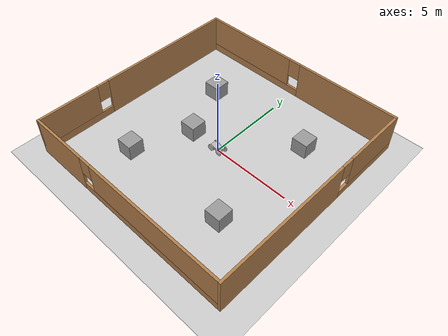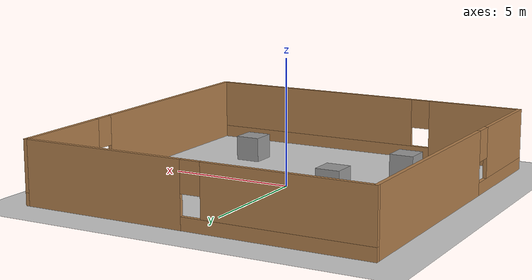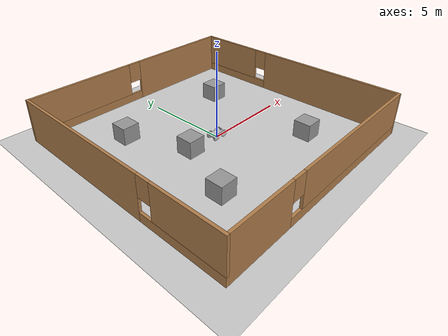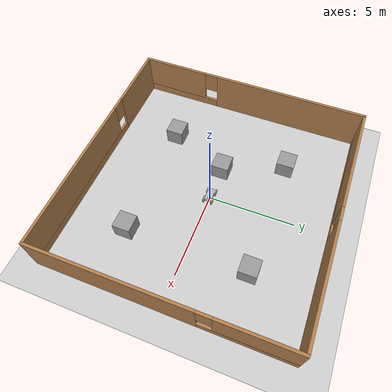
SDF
<?xml version="1.0" ?>
<sdf version="1.5">
    <world name="default">
        <scene>
            <origin_visual>false</origin_visual>
        </scene>

        <include>
            <uri>model://sun</uri>
        </include>

        <include>
            <uri>model://ground_plane</uri>
        </include>

        <model name="drl_rover">
            <include>
                <uri>model://rover</uri>
            </include>
            <plugin name="DRLPlugin" filename="libDRLPlugin.so">
                <mode>train</mode>
                <max_steps>2000</max_steps>
                <chassis_name>rover::chassis</chassis_name>
                <front_left_joint>rover::front_left_joint</front_left_joint>
                <front_right_joint>rover::front_right_joint</front_right_joint>
                <rear_left_joint>rover::rear_left_joint</rear_left_joint>
                <rear_right_joint>rover::rear_right_joint</rear_right_joint>
            </plugin>
        </model>

        <include>
            <uri>model://walls</uri>
        </include>

        <include>
            <uri>model://box_obstacle</uri>
            <name>box_obstacle_01</name>
            <pose>3.5 3.5 0.5 0 0 0</pose>
        </include>

        <include>
            <uri>model://box_obstacle</uri>
            <name>box_obstacle_02</name>
            <pose>-3.5 3.5 0.5 0 0 0</pose>
        </include>

        <include>
            <uri>model://box_obstacle</uri>
            <name>box_obstacle_03</name>
            <pose>-3.5 -3.5 0.5 0 0 0</pose>
        </include>

        <include>
            <uri>model://box_obstacle</uri>
            <name>box_obstacle_04</name>
            <pose>3.5 -3.5 0.5 0 0 0</pose>
        </include>

        <include>
            <uri>model://box_obstacle</uri>
            <name>box_obstacle_05</name>
            <pose>-2 0 0.5 0 0 0</pose>
        </include>

    </world>
</sdf>

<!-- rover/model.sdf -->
<sdf version="1.4">
    <model name="rover">
        <static>false</static>
        <pose>0 0 .12 0 0 0</pose>

        <link name="camera_link">
            <pose>0.3 0 0.27 0 0 0</pose>
            <inertial>
                <mass>0.15</mass>
            </inertial>
            <collision name="camera_collision">
                <geometry>
                    <box>
                        <size>0.05 0.1 0.1</size>
                    </box>
                </geometry>
            </collision>
            <visual name="camera_visual">
                <geometry>
                    <box>
                        <size>0.05 0.1 0.1</size>
                    </box>
                </geometry>
            </visual>
            <sensor name="camera_sensor" type="camera">
                <camera>
                    <horizontal_fov>1.045</horizontal_fov>
                    <image>
                        <width>320</width>
                        <height>240</height>
                        <format>B8G8R8</format>
                    </image>
                    <clip>
                        <near>0.1</near>
                        <far>100</far>
                    </clip>
                </camera>
                <always_on>1</always_on>
                <update_rate>25</update_rate>
                <visualize>true</visualize>
            </sensor>
        </link>

        <joint name="camera_joint" type="revolute">
            <parent>chassis</parent>
            <child>camera_link</child>
            <axis>
                <xyz>0 0 1</xyz>
                <limit>
                    <upper>0</upper>
                    <lower>0</lower>
                </limit>
            </axis>
        </joint>

        <link name="chassis">
            <pose>-0.02 0 0.15 0 0 0</pose>
            <inertial>
                <mass>10</mass>
            </inertial>
            <collision name="chassis_collision">
                <geometry>
                    <box>
                        <size>.8 .4 .16</size>
                    </box>
                </geometry>
            </collision>
            <visual name="chassis_visual">
                <geometry>
                    <box>
                        <size>.8 .4 .16</size>
                    </box>
                </geometry>
            </visual>
            <sensor name="contact_sensor_chassis" type="contact">
                <contact>
                    <collision>chassis_collision</collision>
                </contact>
            </sensor>
        </link>

        <link name="rear_left_wheel">
            <pose>-0.3 0.24 0.1 0 1.5707 1.5707</pose>
            <inertial>
                <mass>1.5</mass>
            </inertial>
            <collision name="rear_left_wheel_collision">
                <geometry>
                    <cylinder>
                        <radius>.2</radius>
                        <length>.07</length>
                    </cylinder>
                </geometry>
                <surface>
                    <friction>
                        <ode>
                            <mu>100</mu>
                            <mu2>50</mu2>
                        </ode>
                    </friction>
                </surface>
            </collision>
            <visual name="rear_left_wheel_visual">
                <geometry>
                    <cylinder>
                        <radius>.2</radius>
                        <length>.07</length>
                    </cylinder>
                </geometry>
            </visual>
            <sensor name="contact_sensor_rlw" type="contact">
                <contact>
                    <collision>rear_left_wheel_collision</collision>
                </contact>
            </sensor>
        </link>

        <joint type="revolute" name="rear_left_joint">
            <child>rear_left_wheel</child>
            <parent>chassis</parent>
            <axis>
                <xyz>0 1 0</xyz>
            </axis>
        </joint>

        <link name="rear_right_wheel">
            <pose>-0.3 -0.24 0.1 0 1.5707 1.5707</pose>
            <inertial>
                <mass>1.5</mass>
            </inertial>
            <collision name="rear_right_wheel_collision">
                <geometry>
                    <cylinder>
                        <radius>.2</radius>
                        <length>.07</length>
                    </cylinder>
                </geometry>
                <surface>
                    <friction>
                        <ode>
                            <mu>100</mu>
                            <mu2>50</mu2>
                        </ode>
                    </friction>
                </surface>
            </collision>
            <visual name="rear_right_wheel_visual">
                <geometry>
                    <cylinder>
                        <radius>.2</radius>
                        <length>.07</length>
                    </cylinder>
                </geometry>
            </visual>
            <sensor name="contact_sensor_rrw" type="contact">
                <contact>
                    <collision>rear_right_wheel_collision</collision>
                </contact>
            </sensor>
        </link>

        <joint type="revolute" name="rear_right_joint">
            <child>rear_right_wheel</child>
            <parent>chassis</parent>
            <axis>
                <xyz>0 1 0</xyz>
            </axis>
        </joint>

        <link name="front_left_wheel">
            <pose>0.3 0.24 0.1 0 1.5707 1.5707</pose>
            <inertial>
                <mass>1.5</mass>
            </inertial>
            <collision name="front_left_wheel_collision">
                <geometry>
                    <cylinder>
                        <radius>.2</radius>
                        <length>.07</length>
                    </cylinder>
                </geometry>
                <surface>
                    <friction>
                        <ode>
                            <mu>100</mu>
                            <mu2>50</mu2>
                        </ode>
                    </friction>
                </surface>
            </collision>
            <visual name="front_left_wheel_visual">
                <geometry>
                    <cylinder>
                        <radius>.2</radius>
                        <length>.07</length>
                    </cylinder>
                </geometry>
            </visual>
            <sensor name="contact_sensor_flw" type="contact">
                <contact>
                    <collision>front_left_wheel_collision</collision>
                </contact>
            </sensor>
        </link>

        <link name="front_left_connector">
            <pose>0.3 0.25 0.1 0 1.5707 1.5707</pose>
        </link>

        <joint type="revolute" name="front_left_joint">
            <parent>chassis</parent>
            <child>front_left_connector</child>
            <axis>
                <xyz>0 0 1</xyz>
            </axis>
        </joint>

        <joint type="revolute" name="front_left_joint2">
            <parent>front_left_connector</parent>
            <child>front_left_wheel</child>
            <axis>
                <xyz>0 1 0</xyz>
            </axis>
        </joint>

        <link name="front_right_wheel">
            <pose>0.3 -0.24 0.1 0 1.5707 1.5707</pose>
            <inertial>
                <mass>1.5</mass>
            </inertial>
            <collision name="front_right_wheel_collision">
                <geometry>
                    <cylinder>
                        <radius>.2</radius>
                        <length>.07</length>
                    </cylinder>
                </geometry>
                <surface>
                    <friction>
                        <ode>
                            <mu>100</mu>
                            <mu2>50</mu2>
                        </ode>
                    </friction>
                </surface>
            </collision>
            <visual name="front_right_wheel_visual">
                <geometry>
                    <cylinder>
                        <radius>.2</radius>
                        <length>.07</length>
                    </cylinder>
                </geometry>
            </visual>
            <sensor name="contact_sensor_frw" type="contact">
                <contact>
                    <collision>front_right_wheel_collision</collision>
                </contact>
            </sensor>
        </link>

        <link name="front_right_connector">
            <pose>0.3 -0.25 0.1 0 1.5707 1.5707</pose>
        </link>

        <joint type="revolute" name="front_right_joint">
            <parent>chassis</parent>
            <child>front_right_connector</child>
            <axis>
                <xyz>0 0 1</xyz>
                <limit>
                    <lower>-0.61</lower>
                    <upper>0.61</upper>
                </limit>
            </axis>
        </joint>

        <joint type="revolute" name="front_right_joint2">
            <parent>front_right_connector</parent>
            <child>front_right_wheel</child>
            <axis>
                <xyz>0 1 0</xyz>
            </axis>
        </joint>

    </model>
</sdf>

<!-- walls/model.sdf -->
<sdf version='1.6'>
  <model name='walls'>
    <pose frame=''>-0.030217 0.029853 0 0 -0 0</pose>
    <link name='Wall_11'>
      <pose frame=''>6.93375 -0 0 0 -0 1.5708</pose>
      <visual name='Wall_11_Visual_0'>
        <pose frame=''>-2.52614 0 1.25 0 -0 0</pose>
        <geometry>
          <box>
            <size>8.94773 0.15 2.5</size>
          </box>
        </geometry>
        <material>
          <script>
            <uri>file://media/materials/scripts/gazebo.material</uri>
            <name>Gazebo/Wood</name>
          </script>
          <ambient>1 1 1 1</ambient>
        </material>
        <meta>
          <layer>0</layer>
        </meta>
      </visual>
      <collision name='Wall_11_Collision_0'>
        <geometry>
          <box>
            <size>8.94773 0.15 2.5</size>
          </box>
        </geometry>
        <pose frame=''>-2.52614 0 1.25 0 -0 0</pose>
      </collision>
      <visual name='Wall_11_Visual_1'>
        <pose frame=''>4.47386 0 0.25 0 -0 0</pose>
        <geometry>
          <box>
            <size>5.05227 0.15 0.5</size>
          </box>
        </geometry>
        <material>
          <script>
            <uri>file://media/materials/scripts/gazebo.material</uri>
            <name>Gazebo/Wood</name>
          </script>
          <ambient>1 1 1 1</ambient>
        </material>
        <meta>
          <layer>0</layer>
        </meta>
      </visual>
      <collision name='Wall_11_Collision_1'>
        <geometry>
          <box>
            <size>5.05227 0.15 0.5</size>
          </box>
        </geometry>
        <pose frame=''>4.47386 0 0.25 0 -0 0</pose>
      </collision>
      <visual name='Wall_11_Visual_2'>
        <pose frame=''>4.87386 0 1.5 0 -0 0</pose>
        <geometry>
          <box>
            <size>4.25227 0.15 2</size>
          </box>
        </geometry>
        <material>
          <script>
            <uri>file://media/materials/scripts/gazebo.material</uri>
            <name>Gazebo/Wood</name>
          </script>
          <ambient>1 1 1 1</ambient>
        </material>
        <meta>
          <layer>0</layer>
        </meta>
      </visual>
      <collision name='Wall_11_Collision_2'>
        <geometry>
          <box>
            <size>4.25227 0.15 2</size>
          </box>
        </geometry>
        <pose frame=''>4.87386 0 1.5 0 -0 0</pose>
      </collision>
      <visual name='Wall_11_Visual_3'>
        <pose frame=''>2.34773 0 1.9 0 -0 0</pose>
        <geometry>
          <box>
            <size>0.8 0.15 1.2</size>
          </box>
        </geometry>
        <material>
          <script>
            <uri>file://media/materials/scripts/gazebo.material</uri>
            <name>Gazebo/Wood</name>
          </script>
          <ambient>1 1 1 1</ambient>
        </material>
        <meta>
          <layer>0</layer>
        </meta>
      </visual>
      <collision name='Wall_11_Collision_3'>
        <geometry>
          <box>
            <size>0.8 0.15 1.2</size>
          </box>
        </geometry>
        <pose frame=''>2.34773 0 1.9 0 -0 0</pose>
      </collision>
    </link>
    <link name='Wall_14'>
      <pose frame=''>-0.008745 6.925 0 0 -0 3.14159</pose>
      <visual name='Wall_14_Visual_0'>
        <pose frame=''>-3.65586 0 1.25 0 -0 0</pose>
        <geometry>
          <box>
            <size>6.68827 0.15 2.5</size>
          </box>
        </geometry>
        <material>
          <script>
            <uri>file://media/materials/scripts/gazebo.material</uri>
            <name>Gazebo/Wood</name>
          </script>
          <ambient>1 1 1 1</ambient>
        </material>
        <meta>
          <layer>0</layer>
        </meta>
      </visual>
      <collision name='Wall_14_Collision_0'>
        <geometry>
          <box>
            <size>6.68827 0.15 2.5</size>
          </box>
        </geometry>
        <pose frame=''>-3.65586 0 1.25 0 -0 0</pose>
      </collision>
      <visual name='Wall_14_Visual_1'>
        <pose frame=''>3.34414 0 0.25 0 -0 0</pose>
        <geometry>
          <box>
            <size>7.31173 0.15 0.5</size>
          </box>
        </geometry>
        <material>
          <script>
            <uri>file://media/materials/scripts/gazebo.material</uri>
            <name>Gazebo/Wood</name>
          </script>
          <ambient>1 1 1 1</ambient>
        </material>
        <meta>
          <layer>0</layer>
        </meta>
      </visual>
      <collision name='Wall_14_Collision_1'>
        <geometry>
          <box>
            <size>7.31173 0.15 0.5</size>
          </box>
        </geometry>
        <pose frame=''>3.34414 0 0.25 0 -0 0</pose>
      </collision>
      <visual name='Wall_14_Visual_2'>
        <pose frame=''>3.74413 0 1.5 0 -0 0</pose>
        <geometry>
          <box>
            <size>6.51173 0.15 2</size>
          </box>
        </geometry>
        <material>
          <script>
            <uri>file://media/materials/scripts/gazebo.material</uri>
            <name>Gazebo/Wood</name>
          </script>
          <ambient>1 1 1 1</ambient>
        </material>
        <meta>
          <layer>0</layer>
        </meta>
      </visual>
      <collision name='Wall_14_Collision_2'>
        <geometry>
          <box>
            <size>6.51173 0.15 2</size>
          </box>
        </geometry>
        <pose frame=''>3.74413 0 1.5 0 -0 0</pose>
      </collision>
      <visual name='Wall_14_Visual_3'>
        <pose frame=''>0.088271 0 1.9 0 -0 0</pose>
        <geometry>
          <box>
            <size>0.8 0.15 1.2</size>
          </box>
        </geometry>
        <material>
          <script>
            <uri>file://media/materials/scripts/gazebo.material</uri>
            <name>Gazebo/Wood</name>
          </script>
          <ambient>1 1 1 1</ambient>
        </material>
        <meta>
          <layer>0</layer>
        </meta>
      </visual>
      <collision name='Wall_14_Collision_3'>
        <geometry>
          <box>
            <size>0.8 0.15 1.2</size>
          </box>
        </geometry>
        <pose frame=''>0.088271 0 1.9 0 -0 0</pose>
      </collision>
    </link>
    <link name='Wall_16'>
      <pose frame=''>-6.93375 -0 0 0 0 -1.5708</pose>
      <visual name='Wall_16_Visual_0'>
        <pose frame=''>-2.41071 0 1.25 0 -0 0</pose>
        <geometry>
          <box>
            <size>9.17859 0.15 2.5</size>
          </box>
        </geometry>
        <material>
          <script>
            <uri>file://media/materials/scripts/gazebo.material</uri>
            <name>Gazebo/Wood</name>
          </script>
          <ambient>1 1 1 1</ambient>
        </material>
        <meta>
          <layer>0</layer>
        </meta>
      </visual>
      <collision name='Wall_16_Collision_0'>
        <geometry>
          <box>
            <size>9.17859 0.15 2.5</size>
          </box>
        </geometry>
        <pose frame=''>-2.41071 0 1.25 0 -0 0</pose>
      </collision>
      <visual name='Wall_16_Visual_1'>
        <pose frame=''>4.58929 0 0.25 0 -0 0</pose>
        <geometry>
          <box>
            <size>4.82141 0.15 0.5</size>
          </box>
        </geometry>
        <material>
          <script>
            <uri>file://media/materials/scripts/gazebo.material</uri>
            <name>Gazebo/Wood</name>
          </script>
          <ambient>1 1 1 1</ambient>
        </material>
        <meta>
          <layer>0</layer>
        </meta>
      </visual>
      <collision name='Wall_16_Collision_1'>
        <geometry>
          <box>
            <size>4.82141 0.15 0.5</size>
          </box>
        </geometry>
        <pose frame=''>4.58929 0 0.25 0 -0 0</pose>
      </collision>
      <visual name='Wall_16_Visual_2'>
        <pose frame=''>4.9893 0 1.5 0 -0 0</pose>
        <geometry>
          <box>
            <size>4.02141 0.15 2</size>
          </box>
        </geometry>
        <material>
          <script>
            <uri>file://media/materials/scripts/gazebo.material</uri>
            <name>Gazebo/Wood</name>
          </script>
          <ambient>1 1 1 1</ambient>
        </material>
        <meta>
          <layer>0</layer>
        </meta>
      </visual>
      <collision name='Wall_16_Collision_2'>
        <geometry>
          <box>
            <size>4.02141 0.15 2</size>
          </box>
        </geometry>
        <pose frame=''>4.9893 0 1.5 0 -0 0</pose>
      </collision>
      <visual name='Wall_16_Visual_3'>
        <pose frame=''>2.57859 0 1.9 0 -0 0</pose>
        <geometry>
          <box>
            <size>0.8 0.15 1.2</size>
          </box>
        </geometry>
        <material>
          <script>
            <uri>file://media/materials/scripts/gazebo.material</uri>
            <name>Gazebo/Wood</name>
          </script>
          <ambient>1 1 1 1</ambient>
        </material>
        <meta>
          <layer>0</layer>
        </meta>
      </visual>
      <collision name='Wall_16_Collision_3'>
        <geometry>
          <box>
            <size>0.8 0.15 1.2</size>
          </box>
        </geometry>
        <pose frame=''>2.57859 0 1.9 0 -0 0</pose>
      </collision>
    </link>
    <link name='Wall_18'>
      <pose frame=''>-0 -6.925 0 0 -0 0</pose>
      <visual name='Wall_18_Visual_0'>
        <pose frame=''>-5.0369 0 1.25 0 -0 0</pose>
        <geometry>
          <box>
            <size>3.94368 0.15 2.5</size>
          </box>
        </geometry>
        <material>
          <script>
            <uri>file://media/materials/scripts/gazebo.material</uri>
            <name>Gazebo/Wood</name>
          </script>
          <ambient>1 1 1 1</ambient>
        </material>
        <meta>
          <layer>0</layer>
        </meta>
      </visual>
      <collision name='Wall_18_Collision_0'>
        <geometry>
          <box>
            <size>3.94368 0.15 2.5</size>
          </box>
        </geometry>
        <pose frame=''>-5.0369 0 1.25 0 -0 0</pose>
      </collision>
      <visual name='Wall_18_Visual_1'>
        <pose frame=''>1.97184 0 0.25 0 -0 0</pose>
        <geometry>
          <box>
            <size>10.0738 0.15 0.5</size>
          </box>
        </geometry>
        <material>
          <script>
            <uri>file://media/materials/scripts/gazebo.material</uri>
            <name>Gazebo/Wood</name>
          </script>
          <ambient>1 1 1 1</ambient>
        </material>
        <meta>
          <layer>0</layer>
        </meta>
      </visual>
      <collision name='Wall_18_Collision_1'>
        <geometry>
          <box>
            <size>10.0738 0.15 0.5</size>
          </box>
        </geometry>
        <pose frame=''>1.97184 0 0.25 0 -0 0</pose>
      </collision>
      <visual name='Wall_18_Visual_2'>
        <pose frame=''>2.37184 0 1.5 0 -0 0</pose>
        <geometry>
          <box>
            <size>9.27381 0.15 2</size>
          </box>
        </geometry>
        <material>
          <script>
            <uri>file://media/materials/scripts/gazebo.material</uri>
            <name>Gazebo/Wood</name>
          </script>
          <ambient>1 1 1 1</ambient>
        </material>
        <meta>
          <layer>0</layer>
        </meta>
      </visual>
      <collision name='Wall_18_Collision_2'>
        <geometry>
          <box>
            <size>9.27381 0.15 2</size>
          </box>
        </geometry>
        <pose frame=''>2.37184 0 1.5 0 -0 0</pose>
      </collision>
      <visual name='Wall_18_Visual_3'>
        <pose frame=''>-2.66506 0 1.9 0 -0 0</pose>
        <geometry>
          <box>
            <size>0.8 0.15 1.2</size>
          </box>
        </geometry>
        <material>
          <script>
            <uri>file://media/materials/scripts/gazebo.material</uri>
            <name>Gazebo/Wood</name>
          </script>
          <ambient>1 1 1 1</ambient>
        </material>
        <meta>
          <layer>0</layer>
        </meta>
      </visual>
      <collision name='Wall_18_Collision_3'>
        <geometry>
          <box>
            <size>0.8 0.15 1.2</size>
          </box>
        </geometry>
        <pose frame=''>-2.66506 0 1.9 0 -0 0</pose>
      </collision>
    </link>
    <static>1</static>
  </model>
</sdf>

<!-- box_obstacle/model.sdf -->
<sdf version="1.4">
    <model name="box_obstacle">
        <pose>0 0 0 0 0 0</pose>
        <link name='obstacle_link'>
            <inertial>
                <mass>200</mass>
                <inertia>
                    <ixx>0.166667</ixx>
                    <ixy>0</ixy>
                    <ixz>0</ixz>
                    <iyy>0.166667</iyy>
                    <iyz>0</iyz>
                    <izz>0.166667</izz>
                 </inertia>
            </inertial>

            <collision name='obstacle_collision'>
                <geometry>
                    <box>
                        <size>1 1 1</size>
                    </box>
                </geometry>
                <max_contacts>10</max_contacts>
            </collision>

            <visual name='visual'>
                <geometry>
                    <box>
                        <size>1 1 1</size>
                    </box>
                </geometry>
                <material>
                    <script>
                        <name>Gazebo/Grey</name>
                        <uri>file://media/materials/scripts/gazebo.material</uri>
                    </script>
                </material>
            </visual>
            <self_collide>0</self_collide>
            <enable_wind>0</enable_wind>
            <kinematic>0</kinematic>
        </link>
        <static>1</static>
    </model>
</sdf>
